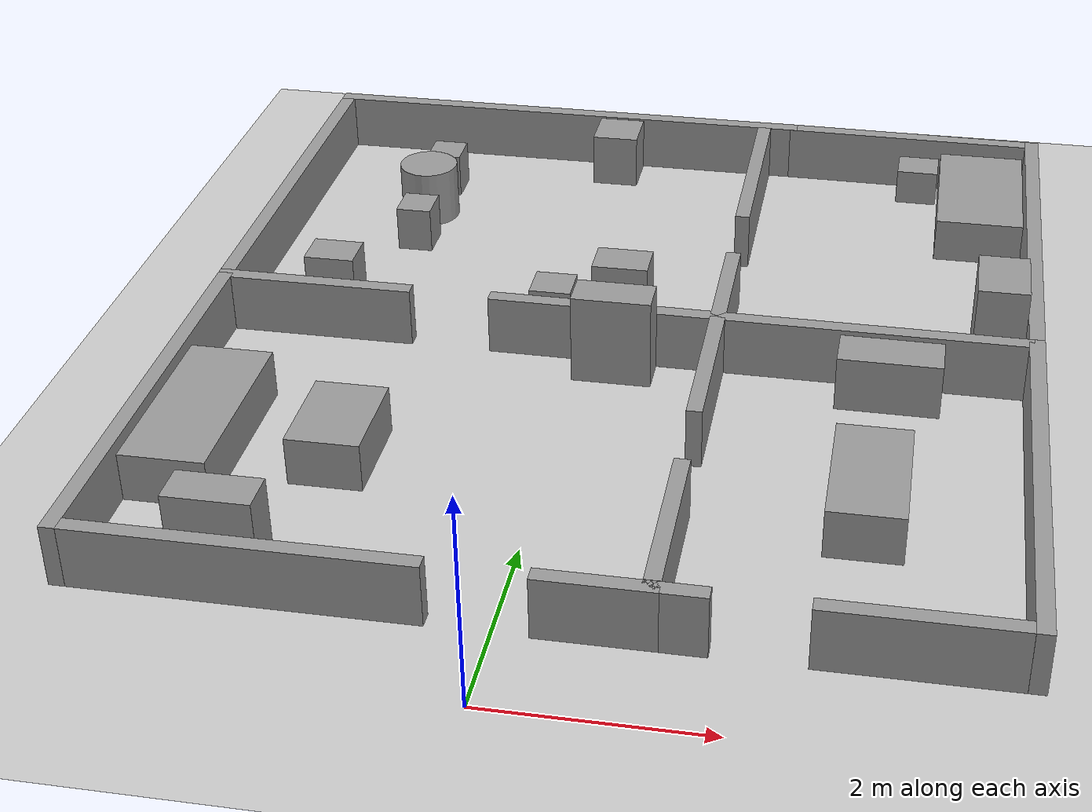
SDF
<sdf version="1.7">
 <world name="default">
  <light name="sun" type="directional">
   <pose>0 0 10 0 -0 0</pose>
   <diffuse>0.8 0.8 0.8 1</diffuse>
   <specular>0.2 0.2 0.2 1</specular>
   <attenuation>
    <range>1000</range>
    <constant>0.9</constant>
    <linear>0.01</linear>
    <quadratic>0.001</quadratic>
   </attenuation>
   <direction>-0.5 0.1 -0.9</direction>
   <spot><inner_angle>0</inner_angle><outer_angle>0</outer_angle><falloff>0</falloff></spot>
  </light>
  <model name="ground_plane">
   <static>1</static>
   <link name="link">
    <collision name="collision">
     <geometry><plane><normal>0 0 1</normal><size>100 100</size></plane></geometry>
     <surface>
      <contact><collide_bitmask>65535</collide_bitmask></contact>
      <friction><ode><mu>100</mu><mu2>50</mu2></ode></friction>
     </surface>
    </collision>
    <visual name="visual">
     <cast_shadows>0</cast_shadows>
     <geometry><plane><normal>0 0 1</normal><size>100 100</size></plane></geometry>
     <material>
      <script><uri>file://media/materials/scripts/gazebo.material</uri><name>Gazebo/Grey</name></script>
     </material>
    </visual>
   </link>
  </model>
  <gravity>0 0 -9.8</gravity>
  <magnetic_field>6e-06 2.3e-05 -4.2e-05</magnetic_field>
  <atmosphere type="adiabatic"/>
  <physics type="ode">
   <max_step_size>0.001</max_step_size>
   <real_time_factor>1</real_time_factor>
   <real_time_update_rate>1000</real_time_update_rate>
  </physics>
  <scene><ambient>0.4 0.4 0.4 1</ambient><background>0.7 0.7 0.7 1</background><shadows>1</shadows></scene>
  <spherical_coordinates>
   <surface_model>EARTH_WGS84</surface_model>
   <latitude_deg>0</latitude_deg>
   <longitude_deg>0</longitude_deg>
   <elevation>0</elevation>
   <heading_deg>0</heading_deg>
  </spherical_coordinates>
  <model name="RoboCupFR">
   <link name="Wall_10">
    <pose>0.524525 -4.35 0 0 -0 0</pose>
    <visual name="Wall_10_Visual">
     <pose>0 0 0.3 0 -0 0</pose>
     <geometry><box><size>1.05 0.15 0.6</size></box></geometry>
     <material>
      <script><uri>file://media/materials/scripts/gazebo.material</uri><name>Gazebo/Grey</name></script>
      <ambient>1 1 1 1</ambient>
      <shader type="pixel"/>
     </material>
     <meta><layer>0</layer></meta>
    </visual>
    <collision name="Wall_10_Collision">
     <pose>0 0 0.3 0 -0 0</pose>
     <geometry><box><size>1.05 0.15 0.6</size></box></geometry>
     <surface>
      <friction>
       <ode><mu>1</mu><mu2>1</mu2><fdir1>0 0 0</fdir1><slip1>0</slip1><slip2>0</slip2></ode>
       <torsional>
        <coefficient>1</coefficient>
        <patch_radius>0</patch_radius>
        <surface_radius>0</surface_radius>
        <use_patch_radius>1</use_patch_radius>
        <ode><slip>0</slip></ode>
       </torsional>
      </friction>
      <bounce><restitution_coefficient>0</restitution_coefficient><threshold>1e+06</threshold></bounce>
      <contact>
       <collide_without_contact>0</collide_without_contact>
       <collide_without_contact_bitmask>1</collide_without_contact_bitmask>
       <collide_bitmask>1</collide_bitmask>
       <ode>
        <soft_cfm>0</soft_cfm>
        <soft_erp>0.2</soft_erp>
        <kp>1e+13</kp>
        <kd>1</kd>
        <max_vel>0.01</max_vel>
        <min_depth>0</min_depth>
       </ode>
       <bullet>
        <split_impulse>1</split_impulse>
        <split_impulse_penetration_threshold>-0.01</split_impulse_penetration_threshold>
        <soft_cfm>0</soft_cfm>
        <soft_erp>0.2</soft_erp>
        <kp>1e+13</kp>
        <kd>1</kd>
       </bullet>
      </contact>
     </surface>
    </collision>
   </link>
   <link name="Wall_12">
    <pose>0.974525 -3.425 0 0 -0 1.5708</pose>
    <inertial>
     <inertia><ixx>0</ixx><ixy>0</ixy><ixz>0</ixz><iyy>0</iyy><iyz>0</iyz><izz>0</izz></inertia>
     <mass>0</mass>
    </inertial>
    <visual name="Wall_12_Visual">
     <pose>0 0 0.3 0 -0 0</pose>
     <geometry><box><size>1.69331 0.15 0.6</size></box></geometry>
     <material>
      <script><uri>file://media/materials/scripts/gazebo.material</uri><name>Gazebo/Grey</name></script>
      <ambient>1 1 1 1</ambient>
      <shader type="pixel"/>
     </material>
     <meta><layer>0</layer></meta>
    </visual>
    <collision name="Wall_12_Collision">
     <pose>0 0 0.3 0 -0 0</pose>
     <geometry><box><size>1.69331 0.15 0.6</size></box></geometry>
     <surface>
      <friction>
       <ode><mu>1</mu><mu2>1</mu2><fdir1>0 0 0</fdir1><slip1>0</slip1><slip2>0</slip2></ode>
       <torsional>
        <coefficient>1</coefficient>
        <patch_radius>0</patch_radius>
        <surface_radius>0</surface_radius>
        <use_patch_radius>1</use_patch_radius>
        <ode><slip>0</slip></ode>
       </torsional>
      </friction>
      <bounce><restitution_coefficient>0</restitution_coefficient><threshold>1e+06</threshold></bounce>
      <contact>
       <collide_without_contact>0</collide_without_contact>
       <collide_without_contact_bitmask>1</collide_without_contact_bitmask>
       <collide_bitmask>1</collide_bitmask>
       <ode>
        <soft_cfm>0</soft_cfm>
        <soft_erp>0.2</soft_erp>
        <kp>1e+13</kp>
        <kd>1</kd>
        <max_vel>0.01</max_vel>
        <min_depth>0</min_depth>
       </ode>
       <bullet>
        <split_impulse>1</split_impulse>
        <split_impulse_penetration_threshold>-0.01</split_impulse_penetration_threshold>
        <soft_cfm>0</soft_cfm>
        <soft_erp>0.2</soft_erp>
        <kp>1e+13</kp>
        <kd>1</kd>
       </bullet>
      </contact>
     </surface>
    </collision>
   </link>
   <link name="Wall_14">
    <pose>1.17453 -4.35 0 0 -0 0</pose>
    <visual name="Wall_14_Visual">
     <pose>0 0 0.3 0 -0 0</pose>
     <geometry><box><size>0.55 0.15 0.6</size></box></geometry>
     <material>
      <script><uri>file://media/materials/scripts/gazebo.material</uri><name>Gazebo/Grey</name></script>
      <ambient>1 1 1 1</ambient>
      <shader type="pixel"/>
     </material>
     <meta><layer>0</layer></meta>
    </visual>
    <collision name="Wall_14_Collision">
     <pose>0 0 0.3 0 -0 0</pose>
     <geometry><box><size>0.55 0.15 0.6</size></box></geometry>
     <surface>
      <friction>
       <ode><mu>1</mu><mu2>1</mu2><fdir1>0 0 0</fdir1><slip1>0</slip1><slip2>0</slip2></ode>
       <torsional>
        <coefficient>1</coefficient>
        <patch_radius>0</patch_radius>
        <surface_radius>0</surface_radius>
        <use_patch_radius>1</use_patch_radius>
        <ode><slip>0</slip></ode>
       </torsional>
      </friction>
      <bounce><restitution_coefficient>0</restitution_coefficient><threshold>1e+06</threshold></bounce>
      <contact>
       <collide_without_contact>0</collide_without_contact>
       <collide_without_contact_bitmask>1</collide_without_contact_bitmask>
       <collide_bitmask>1</collide_bitmask>
       <ode>
        <soft_cfm>0</soft_cfm>
        <soft_erp>0.2</soft_erp>
        <kp>1e+13</kp>
        <kd>1</kd>
        <max_vel>0.01</max_vel>
        <min_depth>0</min_depth>
       </ode>
       <bullet>
        <split_impulse>1</split_impulse>
        <split_impulse_penetration_threshold>-0.01</split_impulse_penetration_threshold>
        <soft_cfm>0</soft_cfm>
        <soft_erp>0.2</soft_erp>
        <kp>1e+13</kp>
        <kd>1</kd>
       </bullet>
      </contact>
     </surface>
    </collision>
   </link>
   <link name="Wall_18">
    <pose>3.09828 -4.35 0 0 -0 0</pose>
    <inertial>
     <inertia><ixx>0</ixx><ixy>0</ixy><ixz>0</ixz><iyy>0</iyy><iyz>0</iyz><izz>0</izz></inertia>
     <mass>0</mass>
    </inertial>
    <visual name="Wall_18_Visual">
     <pose>0 0 0.3 0 -0 0</pose>
     <geometry><box><size>1.70136 0.15 0.6</size></box></geometry>
     <material>
      <script><uri>file://media/materials/scripts/gazebo.material</uri><name>Gazebo/Grey</name></script>
      <ambient>1 1 1 1</ambient>
      <shader type="pixel"/>
     </material>
     <meta><layer>0</layer></meta>
    </visual>
    <collision name="Wall_18_Collision">
     <pose>0 0 0.3 0 -0 0</pose>
     <geometry><box><size>1.70136 0.15 0.6</size></box></geometry>
     <surface>
      <friction>
       <ode><mu>1</mu><mu2>1</mu2><fdir1>0 0 0</fdir1><slip1>0</slip1><slip2>0</slip2></ode>
       <torsional>
        <coefficient>1</coefficient>
        <patch_radius>0</patch_radius>
        <surface_radius>0</surface_radius>
        <use_patch_radius>1</use_patch_radius>
        <ode><slip>0</slip></ode>
       </torsional>
      </friction>
      <bounce><restitution_coefficient>0</restitution_coefficient><threshold>1e+06</threshold></bounce>
      <contact>
       <collide_without_contact>0</collide_without_contact>
       <collide_without_contact_bitmask>1</collide_without_contact_bitmask>
       <collide_bitmask>1</collide_bitmask>
       <ode>
        <soft_cfm>0</soft_cfm>
        <soft_erp>0.2</soft_erp>
        <kp>1e+13</kp>
        <kd>1</kd>
        <max_vel>0.01</max_vel>
        <min_depth>0</min_depth>
       </ode>
       <bullet>
        <split_impulse>1</split_impulse>
        <split_impulse_penetration_threshold>-0.01</split_impulse_penetration_threshold>
        <soft_cfm>0</soft_cfm>
        <soft_erp>0.2</soft_erp>
        <kp>1e+13</kp>
        <kd>1</kd>
       </bullet>
      </contact>
     </surface>
    </collision>
   </link>
   <link name="Wall_20">
    <pose>4.02453 -2.24249 0 0 -0 1.5708</pose>
    <visual name="Wall_20_Visual">
     <pose>0 0 0.3 0 -0 0</pose>
     <geometry><box><size>4.36502 0.15 0.6</size></box></geometry>
     <material>
      <script><uri>file://media/materials/scripts/gazebo.material</uri><name>Gazebo/Grey</name></script>
      <ambient>1 1 1 1</ambient>
      <shader type="pixel"/>
     </material>
     <meta><layer>0</layer></meta>
    </visual>
    <collision name="Wall_20_Collision">
     <pose>0 0 0.3 0 -0 0</pose>
     <geometry><box><size>4.36502 0.15 0.6</size></box></geometry>
     <surface>
      <friction>
       <ode><mu>1</mu><mu2>1</mu2><fdir1>0 0 0</fdir1><slip1>0</slip1><slip2>0</slip2></ode>
       <torsional>
        <coefficient>1</coefficient>
        <patch_radius>0</patch_radius>
        <surface_radius>0</surface_radius>
        <use_patch_radius>1</use_patch_radius>
        <ode><slip>0</slip></ode>
       </torsional>
      </friction>
      <bounce><restitution_coefficient>0</restitution_coefficient><threshold>1e+06</threshold></bounce>
      <contact>
       <collide_without_contact>0</collide_without_contact>
       <collide_without_contact_bitmask>1</collide_without_contact_bitmask>
       <collide_bitmask>1</collide_bitmask>
       <ode>
        <soft_cfm>0</soft_cfm>
        <soft_erp>0.2</soft_erp>
        <kp>1e+13</kp>
        <kd>1</kd>
        <max_vel>0.01</max_vel>
        <min_depth>0</min_depth>
       </ode>
       <bullet>
        <split_impulse>1</split_impulse>
        <split_impulse_penetration_threshold>-0.01</split_impulse_penetration_threshold>
        <soft_cfm>0</soft_cfm>
        <soft_erp>0.2</soft_erp>
        <kp>1e+13</kp>
        <kd>1</kd>
       </bullet>
      </contact>
     </surface>
    </collision>
   </link>
   <link name="Wall_24">
    <pose>-4.02548 -2.225 0 0 -0 1.5708</pose>
    <visual name="Wall_24_Visual">
     <pose>0 0 0.3 0 -0 0</pose>
     <geometry><box><size>4.4 0.15 0.6</size></box></geometry>
     <material>
      <script><uri>file://media/materials/scripts/gazebo.material</uri><name>Gazebo/Grey</name></script>
      <ambient>1 1 1 1</ambient>
      <shader type="pixel"/>
     </material>
     <meta><layer>0</layer></meta>
    </visual>
    <collision name="Wall_24_Collision">
     <pose>0 0 0.3 0 -0 0</pose>
     <geometry><box><size>4.4 0.15 0.6</size></box></geometry>
     <surface>
      <friction>
       <ode><mu>1</mu><mu2>1</mu2><fdir1>0 0 0</fdir1><slip1>0</slip1><slip2>0</slip2></ode>
       <torsional>
        <coefficient>1</coefficient>
        <patch_radius>0</patch_radius>
        <surface_radius>0</surface_radius>
        <use_patch_radius>1</use_patch_radius>
        <ode><slip>0</slip></ode>
       </torsional>
      </friction>
      <bounce><restitution_coefficient>0</restitution_coefficient><threshold>1e+06</threshold></bounce>
      <contact>
       <collide_without_contact>0</collide_without_contact>
       <collide_without_contact_bitmask>1</collide_without_contact_bitmask>
       <collide_bitmask>1</collide_bitmask>
       <ode>
        <soft_cfm>0</soft_cfm>
        <soft_erp>0.2</soft_erp>
        <kp>1e+13</kp>
        <kd>1</kd>
        <max_vel>0.01</max_vel>
        <min_depth>0</min_depth>
       </ode>
       <bullet>
        <split_impulse>1</split_impulse>
        <split_impulse_penetration_threshold>-0.01</split_impulse_penetration_threshold>
        <soft_cfm>0</soft_cfm>
        <soft_erp>0.2</soft_erp>
        <kp>1e+13</kp>
        <kd>1</kd>
       </bullet>
      </contact>
     </surface>
    </collision>
   </link>
   <link name="Wall_26">
    <pose>-3.10047 -0.1 0 0 -0 0</pose>
    <visual name="Wall_26_Visual">
     <pose>0 0 0.3 0 -0 0</pose>
     <geometry><box><size>2 0.15 0.6</size></box></geometry>
     <material>
      <script><uri>file://media/materials/scripts/gazebo.material</uri><name>Gazebo/Grey</name></script>
      <ambient>1 1 1 1</ambient>
      <shader type="pixel"/>
     </material>
     <meta><layer>0</layer></meta>
    </visual>
    <collision name="Wall_26_Collision">
     <pose>0 0 0.3 0 -0 0</pose>
     <geometry><box><size>2 0.15 0.6</size></box></geometry>
     <surface>
      <friction>
       <ode><mu>1</mu><mu2>1</mu2><fdir1>0 0 0</fdir1><slip1>0</slip1><slip2>0</slip2></ode>
       <torsional>
        <coefficient>1</coefficient>
        <patch_radius>0</patch_radius>
        <surface_radius>0</surface_radius>
        <use_patch_radius>1</use_patch_radius>
        <ode><slip>0</slip></ode>
       </torsional>
      </friction>
      <bounce><restitution_coefficient>0</restitution_coefficient><threshold>1e+06</threshold></bounce>
      <contact>
       <collide_without_contact>0</collide_without_contact>
       <collide_without_contact_bitmask>1</collide_without_contact_bitmask>
       <collide_bitmask>1</collide_bitmask>
       <ode>
        <soft_cfm>0</soft_cfm>
        <soft_erp>0.2</soft_erp>
        <kp>1e+13</kp>
        <kd>1</kd>
        <max_vel>0.01</max_vel>
        <min_depth>0</min_depth>
       </ode>
       <bullet>
        <split_impulse>1</split_impulse>
        <split_impulse_penetration_threshold>-0.01</split_impulse_penetration_threshold>
        <soft_cfm>0</soft_cfm>
        <soft_erp>0.2</soft_erp>
        <kp>1e+13</kp>
        <kd>1</kd>
       </bullet>
      </contact>
     </surface>
    </collision>
   </link>
   <link name="Wall_30">
    <pose>1.34953 -0.11749 0 0 0 -0.006538</pose>
    <inertial>
     <inertia><ixx>0</ixx><ixy>0</ixy><ixz>0</ixz><iyy>0</iyy><iyz>0</iyz><izz>0</izz></inertia>
     <mass>0</mass>
    </inertial>
    <visual name="Wall_30_Visual">
     <pose>0 0 0.3 0 -0 0</pose>
     <geometry><box><size>5.30641 0.15 0.6</size></box></geometry>
     <material>
      <script><uri>file://media/materials/scripts/gazebo.material</uri><name>Gazebo/Grey</name></script>
      <ambient>1 1 1 1</ambient>
      <shader type="pixel"/>
     </material>
     <meta><layer>0</layer></meta>
    </visual>
    <collision name="Wall_30_Collision">
     <pose>0 0 0.3 0 -0 0</pose>
     <geometry><box><size>5.30641 0.15 0.6</size></box></geometry>
     <surface>
      <friction>
       <ode><mu>1</mu><mu2>1</mu2><fdir1>0 0 0</fdir1><slip1>0</slip1><slip2>0</slip2></ode>
       <torsional>
        <coefficient>1</coefficient>
        <patch_radius>0</patch_radius>
        <surface_radius>0</surface_radius>
        <use_patch_radius>1</use_patch_radius>
        <ode><slip>0</slip></ode>
       </torsional>
      </friction>
      <bounce><restitution_coefficient>0</restitution_coefficient><threshold>1e+06</threshold></bounce>
      <contact>
       <collide_without_contact>0</collide_without_contact>
       <collide_without_contact_bitmask>1</collide_without_contact_bitmask>
       <collide_bitmask>1</collide_bitmask>
       <ode>
        <soft_cfm>0</soft_cfm>
        <soft_erp>0.2</soft_erp>
        <kp>1e+13</kp>
        <kd>1</kd>
        <max_vel>0.01</max_vel>
        <min_depth>0</min_depth>
       </ode>
       <bullet>
        <split_impulse>1</split_impulse>
        <split_impulse_penetration_threshold>-0.01</split_impulse_penetration_threshold>
        <soft_cfm>0</soft_cfm>
        <soft_erp>0.2</soft_erp>
        <kp>1e+13</kp>
        <kd>1</kd>
       </bullet>
      </contact>
     </surface>
    </collision>
   </link>
   <link name="Wall_33">
    <pose>-4.02548 2.1 0 0 -0 1.5708</pose>
    <visual name="Wall_33_Visual">
     <pose>0 0 0.3 0 -0 0</pose>
     <geometry><box><size>4.55 0.15 0.6</size></box></geometry>
     <material>
      <script><uri>file://media/materials/scripts/gazebo.material</uri><name>Gazebo/Grey</name></script>
      <ambient>1 1 1 1</ambient>
      <shader type="pixel"/>
     </material>
     <meta><layer>0</layer></meta>
    </visual>
    <collision name="Wall_33_Collision">
     <pose>0 0 0.3 0 -0 0</pose>
     <geometry><box><size>4.55 0.15 0.6</size></box></geometry>
     <surface>
      <friction>
       <ode><mu>1</mu><mu2>1</mu2><fdir1>0 0 0</fdir1><slip1>0</slip1><slip2>0</slip2></ode>
       <torsional>
        <coefficient>1</coefficient>
        <patch_radius>0</patch_radius>
        <surface_radius>0</surface_radius>
        <use_patch_radius>1</use_patch_radius>
        <ode><slip>0</slip></ode>
       </torsional>
      </friction>
      <bounce><restitution_coefficient>0</restitution_coefficient><threshold>1e+06</threshold></bounce>
      <contact>
       <collide_without_contact>0</collide_without_contact>
       <collide_without_contact_bitmask>1</collide_without_contact_bitmask>
       <collide_bitmask>1</collide_bitmask>
       <ode>
        <soft_cfm>0</soft_cfm>
        <soft_erp>0.2</soft_erp>
        <kp>1e+13</kp>
        <kd>1</kd>
        <max_vel>0.01</max_vel>
        <min_depth>0</min_depth>
       </ode>
       <bullet>
        <split_impulse>1</split_impulse>
        <split_impulse_penetration_threshold>-0.01</split_impulse_penetration_threshold>
        <soft_cfm>0</soft_cfm>
        <soft_erp>0.2</soft_erp>
        <kp>1e+13</kp>
        <kd>1</kd>
       </bullet>
      </contact>
     </surface>
    </collision>
   </link>
   <link name="Wall_35">
    <pose>-1.37548 4.3 0 0 -0 0</pose>
    <visual name="Wall_35_Visual">
     <pose>0 0 0.3 0 -0 0</pose>
     <geometry><box><size>5.45 0.15 0.6</size></box></geometry>
     <material>
      <script><uri>file://media/materials/scripts/gazebo.material</uri><name>Gazebo/Grey</name></script>
      <ambient>1 1 1 1</ambient>
      <shader type="pixel"/>
     </material>
     <meta><layer>0</layer></meta>
    </visual>
    <collision name="Wall_35_Collision">
     <pose>0 0 0.3 0 -0 0</pose>
     <geometry><box><size>5.45 0.15 0.6</size></box></geometry>
     <surface>
      <friction>
       <ode><mu>1</mu><mu2>1</mu2><fdir1>0 0 0</fdir1><slip1>0</slip1><slip2>0</slip2></ode>
       <torsional>
        <coefficient>1</coefficient>
        <patch_radius>0</patch_radius>
        <surface_radius>0</surface_radius>
        <use_patch_radius>1</use_patch_radius>
        <ode><slip>0</slip></ode>
       </torsional>
      </friction>
      <bounce><restitution_coefficient>0</restitution_coefficient><threshold>1e+06</threshold></bounce>
      <contact>
       <collide_without_contact>0</collide_without_contact>
       <collide_without_contact_bitmask>1</collide_without_contact_bitmask>
       <collide_bitmask>1</collide_bitmask>
       <ode>
        <soft_cfm>0</soft_cfm>
        <soft_erp>0.2</soft_erp>
        <kp>1e+13</kp>
        <kd>1</kd>
        <max_vel>0.01</max_vel>
        <min_depth>0</min_depth>
       </ode>
       <bullet>
        <split_impulse>1</split_impulse>
        <split_impulse_penetration_threshold>-0.01</split_impulse_penetration_threshold>
        <soft_cfm>0</soft_cfm>
        <soft_erp>0.2</soft_erp>
        <kp>1e+13</kp>
        <kd>1</kd>
       </bullet>
      </contact>
     </surface>
    </collision>
   </link>
   <link name="Wall_42">
    <pose>0.974525 -0.325 0 0 -0 1.5708</pose>
    <visual name="Wall_42_Visual">
     <pose>0 0 0.3 0 -0 0</pose>
     <geometry><box><size>3 0.15 0.6</size></box></geometry>
     <material>
      <script><uri>file://media/materials/scripts/gazebo.material</uri><name>Gazebo/Grey</name></script>
      <ambient>1 1 1 1</ambient>
      <shader type="pixel"/>
     </material>
     <meta><layer>0</layer></meta>
    </visual>
    <collision name="Wall_42_Collision">
     <pose>0 0 0.3 0 -0 0</pose>
     <geometry><box><size>3 0.15 0.6</size></box></geometry>
     <surface>
      <friction>
       <ode><mu>1</mu><mu2>1</mu2><fdir1>0 0 0</fdir1><slip1>0</slip1><slip2>0</slip2></ode>
       <torsional>
        <coefficient>1</coefficient>
        <patch_radius>0</patch_radius>
        <surface_radius>0</surface_radius>
        <use_patch_radius>1</use_patch_radius>
        <ode><slip>0</slip></ode>
       </torsional>
      </friction>
      <bounce><restitution_coefficient>0</restitution_coefficient><threshold>1e+06</threshold></bounce>
      <contact>
       <collide_without_contact>0</collide_without_contact>
       <collide_without_contact_bitmask>1</collide_without_contact_bitmask>
       <collide_bitmask>1</collide_bitmask>
       <ode>
        <soft_cfm>0</soft_cfm>
        <soft_erp>0.2</soft_erp>
        <kp>1e+13</kp>
        <kd>1</kd>
        <max_vel>0.01</max_vel>
        <min_depth>0</min_depth>
       </ode>
       <bullet>
        <split_impulse>1</split_impulse>
        <split_impulse_penetration_threshold>-0.01</split_impulse_penetration_threshold>
        <soft_cfm>0</soft_cfm>
        <soft_erp>0.2</soft_erp>
        <kp>1e+13</kp>
        <kd>1</kd>
       </bullet>
      </contact>
     </surface>
    </collision>
   </link>
   <link name="Wall_47">
    <pose>4.02453 2.06501 0 0 -0 1.5708</pose>
    <visual name="Wall_47_Visual">
     <pose>0 0 0.3 0 -0 0</pose>
     <geometry><box><size>4.55 0.15 0.6</size></box></geometry>
     <material>
      <script><uri>file://media/materials/scripts/gazebo.material</uri><name>Gazebo/Grey</name></script>
      <ambient>1 1 1 1</ambient>
      <shader type="pixel"/>
     </material>
     <meta><layer>0</layer></meta>
    </visual>
    <collision name="Wall_47_Collision">
     <pose>0 0 0.3 0 -0 0</pose>
     <geometry><box><size>4.55 0.15 0.6</size></box></geometry>
     <surface>
      <friction>
       <ode><mu>1</mu><mu2>1</mu2><fdir1>0 0 0</fdir1><slip1>0</slip1><slip2>0</slip2></ode>
       <torsional>
        <coefficient>1</coefficient>
        <patch_radius>0</patch_radius>
        <surface_radius>0</surface_radius>
        <use_patch_radius>1</use_patch_radius>
        <ode><slip>0</slip></ode>
       </torsional>
      </friction>
      <bounce><restitution_coefficient>0</restitution_coefficient><threshold>1e+06</threshold></bounce>
      <contact>
       <collide_without_contact>0</collide_without_contact>
       <collide_without_contact_bitmask>1</collide_without_contact_bitmask>
       <collide_bitmask>1</collide_bitmask>
       <ode>
        <soft_cfm>0</soft_cfm>
        <soft_erp>0.2</soft_erp>
        <kp>1e+13</kp>
        <kd>1</kd>
        <max_vel>0.01</max_vel>
        <min_depth>0</min_depth>
       </ode>
       <bullet>
        <split_impulse>1</split_impulse>
        <split_impulse_penetration_threshold>-0.01</split_impulse_penetration_threshold>
        <soft_cfm>0</soft_cfm>
        <soft_erp>0.2</soft_erp>
        <kp>1e+13</kp>
        <kd>1</kd>
       </bullet>
      </contact>
     </surface>
    </collision>
   </link>
   <link name="Wall_49">
    <pose>2.64953 4.2825 0 0 -0 3.12887</pose>
    <visual name="Wall_49_Visual">
     <pose>0 0 0.3 0 -0 0</pose>
     <geometry><box><size>2.90022 0.15 0.6</size></box></geometry>
     <material>
      <script><uri>file://media/materials/scripts/gazebo.material</uri><name>Gazebo/Grey</name></script>
      <ambient>1 1 1 1</ambient>
      <shader type="pixel"/>
     </material>
     <meta><layer>0</layer></meta>
    </visual>
    <collision name="Wall_49_Collision">
     <pose>0 0 0.3 0 -0 0</pose>
     <geometry><box><size>2.90022 0.15 0.6</size></box></geometry>
     <surface>
      <friction>
       <ode><mu>1</mu><mu2>1</mu2><fdir1>0 0 0</fdir1><slip1>0</slip1><slip2>0</slip2></ode>
       <torsional>
        <coefficient>1</coefficient>
        <patch_radius>0</patch_radius>
        <surface_radius>0</surface_radius>
        <use_patch_radius>1</use_patch_radius>
        <ode><slip>0</slip></ode>
       </torsional>
      </friction>
      <bounce><restitution_coefficient>0</restitution_coefficient><threshold>1e+06</threshold></bounce>
      <contact>
       <collide_without_contact>0</collide_without_contact>
       <collide_without_contact_bitmask>1</collide_without_contact_bitmask>
       <collide_bitmask>1</collide_bitmask>
       <ode>
        <soft_cfm>0</soft_cfm>
        <soft_erp>0.2</soft_erp>
        <kp>1e+13</kp>
        <kd>1</kd>
        <max_vel>0.01</max_vel>
        <min_depth>0</min_depth>
       </ode>
       <bullet>
        <split_impulse>1</split_impulse>
        <split_impulse_penetration_threshold>-0.01</split_impulse_penetration_threshold>
        <soft_cfm>0</soft_cfm>
        <soft_erp>0.2</soft_erp>
        <kp>1e+13</kp>
        <kd>1</kd>
       </bullet>
      </contact>
     </surface>
    </collision>
   </link>
   <link name="Wall_51">
    <pose>0.974525 3.11865 0 0 -0 1.5708</pose>
    <inertial>
     <inertia><ixx>0</ixx><ixy>0</ixy><ixz>0</ixz><iyy>0</iyy><iyz>0</iyz><izz>0</izz></inertia>
     <mass>0</mass>
    </inertial>
    <visual name="Wall_51_Visual">
     <pose>0 0 0.3 0 -0 0</pose>
     <geometry><box><size>2.282 0.15 0.6</size></box></geometry>
     <material>
      <script><uri>file://media/materials/scripts/gazebo.material</uri><name>Gazebo/Grey</name></script>
      <ambient>1 1 1 1</ambient>
      <shader type="pixel"/>
     </material>
     <meta><layer>0</layer></meta>
    </visual>
    <collision name="Wall_51_Collision">
     <pose>0 0 0.3 0 -0 0</pose>
     <geometry><box><size>2.282 0.15 0.6</size></box></geometry>
     <surface>
      <friction>
       <ode><mu>1</mu><mu2>1</mu2><fdir1>0 0 0</fdir1><slip1>0</slip1><slip2>0</slip2></ode>
       <torsional>
        <coefficient>1</coefficient>
        <patch_radius>0</patch_radius>
        <surface_radius>0</surface_radius>
        <use_patch_radius>1</use_patch_radius>
        <ode><slip>0</slip></ode>
       </torsional>
      </friction>
      <bounce><restitution_coefficient>0</restitution_coefficient><threshold>1e+06</threshold></bounce>
      <contact>
       <collide_without_contact>0</collide_without_contact>
       <collide_without_contact_bitmask>1</collide_without_contact_bitmask>
       <collide_bitmask>1</collide_bitmask>
       <ode>
        <soft_cfm>0</soft_cfm>
        <soft_erp>0.2</soft_erp>
        <kp>1e+13</kp>
        <kd>1</kd>
        <max_vel>0.01</max_vel>
        <min_depth>0</min_depth>
       </ode>
       <bullet>
        <split_impulse>1</split_impulse>
        <split_impulse_penetration_threshold>-0.01</split_impulse_penetration_threshold>
        <soft_cfm>0</soft_cfm>
        <soft_erp>0.2</soft_erp>
        <kp>1e+13</kp>
        <kd>1</kd>
       </bullet>
      </contact>
     </surface>
    </collision>
   </link>
   <link name="Wall_6">
    <pose>-2.41581 -4.35 0 0 -0 0</pose>
    <inertial>
     <inertia><ixx>0</ixx><ixy>0</ixy><ixz>0</ixz><iyy>0</iyy><iyz>0</iyz><izz>0</izz></inertia>
     <mass>0</mass>
    </inertial>
    <visual name="Wall_6_Visual">
     <pose>0 0 0.3 0 -0 0</pose>
     <geometry><box><size>3.07738 0.15 0.6</size></box></geometry>
     <material>
      <script><uri>file://media/materials/scripts/gazebo.material</uri><name>Gazebo/Grey</name></script>
      <ambient>1 1 1 1</ambient>
      <shader type="pixel"/>
     </material>
     <meta><layer>0</layer></meta>
    </visual>
    <collision name="Wall_6_Collision">
     <pose>0 0 0.3 0 -0 0</pose>
     <geometry><box><size>3.07738 0.15 0.6</size></box></geometry>
     <surface>
      <friction>
       <ode><mu>1</mu><mu2>1</mu2><fdir1>0 0 0</fdir1><slip1>0</slip1><slip2>0</slip2></ode>
       <torsional>
        <coefficient>1</coefficient>
        <patch_radius>0</patch_radius>
        <surface_radius>0</surface_radius>
        <use_patch_radius>1</use_patch_radius>
        <ode><slip>0</slip></ode>
       </torsional>
      </friction>
      <bounce><restitution_coefficient>0</restitution_coefficient><threshold>1e+06</threshold></bounce>
      <contact>
       <collide_without_contact>0</collide_without_contact>
       <collide_without_contact_bitmask>1</collide_without_contact_bitmask>
       <collide_bitmask>1</collide_bitmask>
       <ode>
        <soft_cfm>0</soft_cfm>
        <soft_erp>0.2</soft_erp>
        <kp>1e+13</kp>
        <kd>1</kd>
        <max_vel>0.01</max_vel>
        <min_depth>0</min_depth>
       </ode>
       <bullet>
        <split_impulse>1</split_impulse>
        <split_impulse_penetration_threshold>-0.01</split_impulse_penetration_threshold>
        <soft_cfm>0</soft_cfm>
        <soft_erp>0.2</soft_erp>
        <kp>1e+13</kp>
        <kd>1</kd>
       </bullet>
      </contact>
     </surface>
    </collision>
   </link>
   <static>1</static>
   <pose>0.317278 5.3073 0 0 -0 0</pose>
  </model>
  <model name="unit_cylinder">
   <pose>-2.30855 7.94536 0.307383 -2e-06 2e-06 -0</pose>
   <link name="link">
    <inertial>
     <mass>1</mass>
     <inertia><ixx>0.145833</ixx><ixy>0</ixy><ixz>0</ixz><iyy>0.145833</iyy><iyz>0</iyz><izz>0.125</izz></inertia>
    </inertial>
    <collision name="collision">
     <geometry><cylinder><radius>0.315017</radius><length>0.61478</length></cylinder></geometry>
    </collision>
    <visual name="visual">
     <geometry><cylinder><radius>0.315017</radius><length>0.61478</length></cylinder></geometry>
     <material>
      <script><name>Gazebo/Grey</name><uri>file://media/materials/scripts/gazebo.material</uri></script>
     </material>
    </visual>
   </link>
  </model>
  <model name="unit_box">
   <pose>-2.26324 7.26358 0.239786 0 -0 0</pose>
   <link name="link">
    <inertial>
     <mass>1</mass>
     <inertia>
      <ixx>0.166667</ixx>
      <ixy>0</ixy>
      <ixz>0</ixz>
      <iyy>0.166667</iyy>
      <iyz>0</iyz>
      <izz>0.166667</izz>
     </inertia>
    </inertial>
    <collision name="collision">
     <geometry><box><size>0.369074 0.394169 0.479572</size></box></geometry>
    </collision>
    <visual name="visual">
     <geometry><box><size>0.369074 0.394169 0.479572</size></box></geometry>
     <material>
      <script><name>Gazebo/Grey</name><uri>file://media/materials/scripts/gazebo.material</uri></script>
     </material>
    </visual>
   </link>
  </model>
  <model name="unit_box_clone">
   <pose>-2.26562 8.61516 0.239786 0 -0 0</pose>
   <link name="link">
    <inertial>
     <mass>1</mass>
     <inertia>
      <ixx>0.166667</ixx>
      <ixy>0</ixy>
      <ixz>0</ixz>
      <iyy>0.166667</iyy>
      <iyz>0</iyz>
      <izz>0.166667</izz>
     </inertia>
    </inertial>
    <collision name="collision"><geometry><box><size>0.369074 0.39417 0.479572</size></box></geometry></collision>
    <visual name="visual">
     <geometry><box><size>0.369074 0.39417 0.479572</size></box></geometry>
     <material>
      <script><name>Gazebo/Grey</name><uri>file://media/materials/scripts/gazebo.material</uri></script>
     </material>
    </visual>
   </link>
  </model>
  <model name="unit_box_clone_0">
   <pose>-2.64475 5.48091 0.406871 0 -0 0</pose>
   <link name="link">
    <inertial>
     <mass>1</mass>
     <inertia>
      <ixx>0.166667</ixx>
      <ixy>0</ixy>
      <ixz>0</ixz>
      <iyy>0.166667</iyy>
      <iyz>0</iyz>
      <izz>0.166667</izz>
     </inertia>
    </inertial>
    <collision name="collision"><geometry><box><size>0.501391 0.39417 0.813743</size></box></geometry></collision>
    <visual name="visual">
     <geometry><box><size>0.501391 0.39417 0.813743</size></box></geometry>
     <material>
      <script><name>Gazebo/Grey</name><uri>file://media/materials/scripts/gazebo.material</uri></script>
     </material>
    </visual>
   </link>
  </model>
  <model name="unit_box_0">
   <pose>-3.22816 3.06598 0.240535 0 -0 2e-06</pose>
   <link name="link">
    <inertial>
     <mass>1</mass>
     <inertia>
      <ixx>0.166667</ixx>
      <ixy>0</ixy>
      <ixz>0</ixz>
      <iyy>0.166667</iyy>
      <iyz>0</iyz>
      <izz>0.166667</izz>
     </inertia>
    </inertial>
    <collision name="collision"><geometry><box><size>0.810074 1.86904 0.481071</size></box></geometry></collision>
    <visual name="visual">
     <geometry><box><size>0.810074 1.86904 0.481071</size></box></geometry>
     <material>
      <script><name>Gazebo/Grey</name><uri>file://media/materials/scripts/gazebo.material</uri></script>
     </material>
    </visual>
   </link>
  </model>
  <model name="unit_box_1">
   <pose>3.79054 8.637 0.230849 0 -0 0</pose>
   <link name="link">
    <inertial>
     <mass>1</mass>
     <inertia>
      <ixx>0.166667</ixx>
      <ixy>0</ixy>
      <ixz>0</ixz>
      <iyy>0.166667</iyy>
      <iyz>0</iyz>
      <izz>0.166667</izz>
     </inertia>
    </inertial>
    <collision name="collision"><geometry><box><size>0.913153 1.67574 0.461699</size></box></geometry></collision>
    <visual name="visual">
     <geometry><box><size>0.913153 1.67574 0.461699</size></box></geometry>
     <material>
      <script><name>Gazebo/Grey</name><uri>file://media/materials/scripts/gazebo.material</uri></script>
     </material>
    </visual>
   </link>
  </model>
  <model name="unit_box_2">
   <pose>3.09096 9.29434 0.191953 0 -0 -0.012723</pose>
   <link name="link">
    <inertial>
     <mass>1</mass>
     <inertia>
      <ixx>0.166667</ixx>
      <ixy>0</ixy>
      <ixz>0</ixz>
      <iyy>0.166667</iyy>
      <iyz>0</iyz>
      <izz>0.166667</izz>
     </inertia>
    </inertial>
    <collision name="collision">
     <geometry><box><size>0.445556 0.402287 0.383907</size></box></geometry>
    </collision>
    <visual name="visual">
     <geometry><box><size>0.445556 0.402287 0.383907</size></box></geometry>
     <material>
      <script><name>Gazebo/Grey</name><uri>file://media/materials/scripts/gazebo.material</uri></script>
     </material>
    </visual>
   </link>
  </model>
  <model name="unit_box_clone_0_clone">
   <pose>4.00478 5.90283 0.457581 0 -0 0</pose>
   <link name="link">
    <inertial>
     <mass>1</mass>
     <inertia>
      <ixx>0.166667</ixx>
      <ixy>0</ixy>
      <ixz>0</ixz>
      <iyy>0.166667</iyy>
      <iyz>0</iyz>
      <izz>0.166667</izz>
     </inertia>
    </inertial>
    <collision name="collision">
     <geometry><box><size>0.501389 0.725923 0.915159</size></box></geometry>
    </collision>
    <visual name="visual">
     <geometry><box><size>0.501389 0.725923 0.915159</size></box></geometry>
     <material>
      <script><name>Gazebo/Grey</name><uri>file://media/materials/scripts/gazebo.material</uri></script>
     </material>
    </visual>
   </link>
  </model>
  <model name="unit_box_clone_0_clone_0">
   <pose>0.305076 5.47916 0.489618 0 -0 0</pose>
   <link name="link">
    <inertial>
     <mass>1</mass>
     <inertia>
      <ixx>0.166667</ixx>
      <ixy>0</ixy>
      <ixz>0</ixz>
      <iyy>0.166667</iyy>
      <iyz>0</iyz>
      <izz>0.166667</izz>
     </inertia>
    </inertial>
    <collision name="collision"><geometry><box><size>0.550425 0.39417 0.979233</size></box></geometry></collision>
    <visual name="visual">
     <geometry><box><size>0.550425 0.39417 0.979233</size></box></geometry>
     <material>
      <script><name>Gazebo/Grey</name><uri>file://media/materials/scripts/gazebo.material</uri></script>
     </material>
    </visual>
   </link>
  </model>
  <model name="unit_box_clone_1">
   <pose>-0.377005 9.26331 0.291269 0 -0 0</pose>
   <link name="link">
    <inertial>
     <mass>1</mass>
     <inertia>
      <ixx>0.166667</ixx>
      <ixy>0</ixy>
      <ixz>0</ixz>
      <iyy>0.166667</iyy>
      <iyz>0</iyz>
      <izz>0.166667</izz>
     </inertia>
    </inertial>
    <collision name="collision"><geometry><box><size>0.50052 0.524124 0.582536</size></box></geometry></collision>
    <visual name="visual">
     <geometry><box><size>0.50052 0.524124 0.582536</size></box></geometry>
     <material>
      <script><name>Gazebo/Grey</name><uri>file://media/materials/scripts/gazebo.material</uri></script>
     </material>
    </visual>
   </link>
  </model>
  <model name="unit_box_clone_0_clone_1">
   <pose>-0.39451 5.48081 0.322897 0 -0 0</pose>
   <link name="link">
    <inertial>
     <mass>1</mass>
     <inertia>
      <ixx>0.166667</ixx>
      <ixy>0</ixy>
      <ixz>0</ixz>
      <iyy>0.166667</iyy>
      <iyz>0</iyz>
      <izz>0.166667</izz>
     </inertia>
    </inertial>
    <collision name="collision"><geometry><box><size>0.41338 0.39417 0.645795</size></box></geometry></collision>
    <visual name="visual">
     <geometry><box><size>0.41338 0.39417 0.645795</size></box></geometry>
     <material>
      <script><name>Gazebo/Grey</name><uri>file://media/materials/scripts/gazebo.material</uri></script>
     </material>
    </visual>
   </link>
  </model>
  <model name="unit_box_0_clone">
   <pose>2.90286 3.0106 0.240535 0 -0 2e-06</pose>
   <link name="link">
    <inertial>
     <mass>1</mass>
     <inertia>
      <ixx>0.166667</ixx>
      <ixy>0</ixy>
      <ixz>0</ixz>
      <iyy>0.166667</iyy>
      <iyz>0</iyz>
      <izz>0.166667</izz>
     </inertia>
    </inertial>
    <collision name="collision"><geometry><box><size>0.699286 1.34806 0.481071</size></box></geometry></collision>
    <visual name="visual">
     <geometry><box><size>0.699286 1.34806 0.481071</size></box></geometry>
     <material>
      <script><name>Gazebo/Grey</name><uri>file://media/materials/scripts/gazebo.material</uri></script>
     </material>
    </visual>
   </link>
  </model>
  <model name="unit_box_3">
   <pose>2.98562 4.87376 0.278585 0 0 -0.006542</pose>
   <link name="link">
    <inertial>
     <mass>1</mass>
     <inertia>
      <ixx>0.166667</ixx>
      <ixy>0</ixy>
      <ixz>0</ixz>
      <iyy>0.166667</iyy>
      <iyz>0</iyz>
      <izz>0.166667</izz>
     </inertia>
    </inertial>
    <collision name="collision"><geometry><box><size>1 0.446984 0.557171</size></box></geometry></collision>
    <visual name="visual">
     <geometry><box><size>1 0.446984 0.557171</size></box></geometry>
     <material>
      <script><name>Gazebo/Grey</name><uri>file://media/materials/scripts/gazebo.material</uri></script>
     </material>
    </visual>
   </link>
  </model>
  <model name="unit_box_0_clone_clone">
   <pose>-1.91748 3.09509 0.240535 0 -0 2e-06</pose>
   <link name="link">
    <inertial>
     <mass>1</mass>
     <inertia>
      <ixx>0.166667</ixx>
      <ixy>0</ixy>
      <ixz>0</ixz>
      <iyy>0.166667</iyy>
      <iyz>0</iyz>
      <izz>0.166667</izz>
     </inertia>
    </inertial>
    <collision name="collision">
     <geometry><box><size>0.699286 0.979468 0.481071</size></box></geometry>
    </collision>
    <visual name="visual">
     <geometry><box><size>0.699286 0.979468 0.481071</size></box></geometry>
     <material>
      <script><name>Gazebo/Grey</name><uri>file://media/materials/scripts/gazebo.material</uri></script>
     </material>
    </visual>
   </link>
  </model>
  <model name="unit_box_clone_0_clone_clone">
   <pose>-2.37643 1.23685 0.457581 0 -0 0.000818</pose>
   <link name="link">
    <inertial>
     <mass>1</mass>
     <inertia>
      <ixx>0.166667</ixx>
      <ixy>0</ixy>
      <ixz>0</ixz>
      <iyy>0.166667</iyy>
      <iyz>0</iyz>
      <izz>0.166667</izz>
     </inertia>
    </inertial>
    <collision name="collision">
     <geometry><box><size>0.778467 0.377591 0.915162</size></box></geometry>
    </collision>
    <visual name="visual">
     <geometry><box><size>0.778467 0.377591 0.915162</size></box></geometry>
     <material>
      <script><name>Gazebo/Grey</name><uri>file://media/materials/scripts/gazebo.material</uri></script>
     </material>
    </visual>
   </link>
  </model>
  <model name="unit_box_clone_0_clone_clone_clone">
   <pose>0.310155 4.92772 0.457581 0 -0 0.000818</pose>
   <link name="link">
    <inertial>
     <mass>1</mass>
     <inertia>
      <ixx>0.166667</ixx>
      <ixy>0</ixy>
      <ixz>0</ixz>
      <iyy>0.166667</iyy>
      <iyz>0</iyz>
      <izz>0.166667</izz>
     </inertia>
    </inertial>
    <collision name="collision">
     <geometry><box><size>0.778468 0.377591 0.915162</size></box></geometry>
    </collision>
    <visual name="visual">
     <geometry><box><size>0.778468 0.377591 0.915162</size></box></geometry>
     <material>
      <script><name>Gazebo/Grey</name><uri>file://media/materials/scripts/gazebo.material</uri></script>
     </material>
    </visual>
   </link>
  </model>
 </world>
</sdf>
